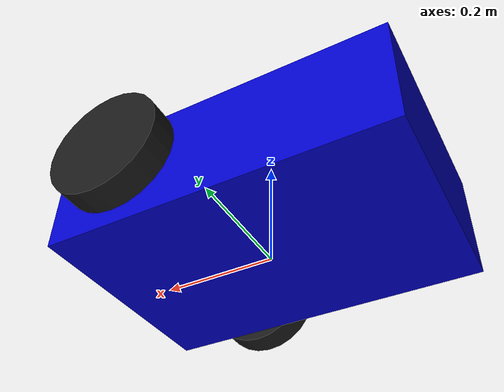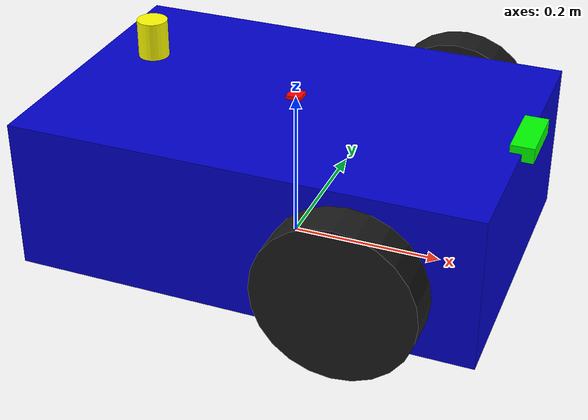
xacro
<?xml version="1.0"?>
<robot name="rover" xmlns:xacro="http://www.ros.org/wiki/xacro">

  <!-- Base link -->
  <link name="base_link">
    <visual>
      <geometry>
        <box size="0.6 0.4 0.2"/>
      </geometry>
      <material name="blue">
        <color rgba="0 0 0.8 1"/>
      </material>
    </visual>
    <collision>
      <geometry>
        <box size="0.6 0.4 0.2"/>
      </geometry>
    </collision>
    <inertial>
      <mass value="10.0"/>
      <inertia ixx="0.1" ixy="0.0" ixz="0.0" iyy="0.1" iyz="0.0" izz="0.1"/>
    </inertial>
  </link>

  <!-- Base footprint -->
  <link name="base_footprint"/>

  <joint name="base_joint" type="fixed">
    <parent link="base_footprint"/>
    <child link="base_link"/>
    <origin xyz="0 0 0.1" rpy="0 0 0"/>
  </joint>

  <!-- Wheels -->
  <xacro:macro name="wheel" params="prefix reflect">
    <link name="${prefix}_wheel">
      <visual>
        <geometry>
          <cylinder radius="0.1" length="0.05"/>
        </geometry>
        <material name="black">
          <color rgba="0.1 0.1 0.1 1"/>
        </material>
        <origin xyz="0 0 0" rpy="1.5707 0 0"/>
      </visual>
      <collision>
        <geometry>
          <cylinder radius="0.1" length="0.05"/>
        </geometry>
        <origin xyz="0 0 0" rpy="1.5707 0 0"/>
      </collision>
      <inertial>
        <mass value="0.5"/>
        <inertia ixx="0.01" ixy="0.0" ixz="0.0" iyy="0.01" iyz="0.0" izz="0.01"/>
      </inertial>
    </link>

    <joint name="${prefix}_wheel_joint" type="continuous">
      <parent link="base_link"/>
      <child link="${prefix}_wheel"/>
      <origin xyz="0.15 ${reflect*0.25} 0" rpy="0 0 0"/>
      <axis xyz="0 1 0"/>
    </joint>
  </xacro:macro>

  <!-- Create 4 wheels -->
  <xacro:wheel prefix="front_left" reflect="1"/>
  <xacro:wheel prefix="front_right" reflect="-1"/>
  <xacro:wheel prefix="rear_left" reflect="1"/>
  <xacro:wheel prefix="rear_right" reflect="-1"/>

  <!-- IMU Link -->
  <link name="imu_link">
    <visual>
      <geometry>
        <box size="0.02 0.02 0.01"/>
      </geometry>
      <material name="red">
        <color rgba="1 0 0 1"/>
      </material>
    </visual>
  </link>

  <joint name="imu_joint" type="fixed">
    <parent link="base_link"/>
    <child link="imu_link"/>
    <origin xyz="0 0 0.1" rpy="0 0 0"/>
  </joint>

  <!-- GPS Link -->
  <link name="gps_link">
    <visual>
      <geometry>
        <cylinder radius="0.02" length="0.05"/>
      </geometry>
      <material name="yellow">
        <color rgba="1 1 0 1"/>
      </material>
    </visual>
  </link>

  <joint name="gps_joint" type="fixed">
    <parent link="base_link"/>
    <child link="gps_link"/>
    <origin xyz="-0.2 0 0.15" rpy="0 0 0"/>
  </joint>

  <!-- Camera Link -->
  <link name="camera_link">
    <visual>
      <geometry>
        <box size="0.03 0.08 0.02"/>
      </geometry>
      <material name="green">
        <color rgba="0 1 0 1"/>
      </material>
    </visual>
  </link>

  <joint name="camera_joint" type="fixed">
    <parent link="base_link"/>
    <child link="camera_link"/>
    <origin xyz="0.3 0 0.1" rpy="0 0 0"/>
  </joint>

</robot>
